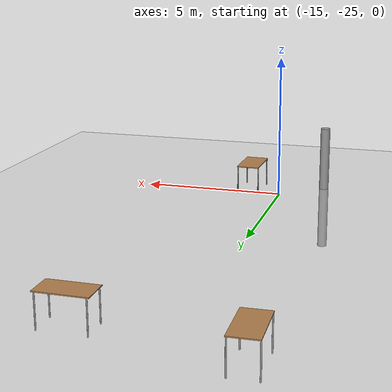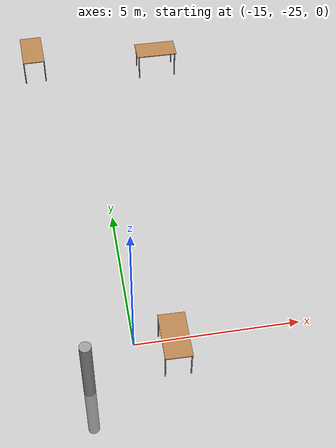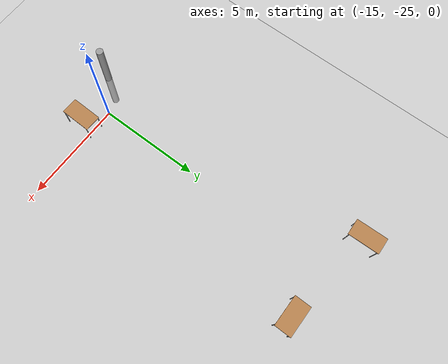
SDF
<sdf version="1.7">
 <world name="default">
  <model name="ground_plane">
   <static>1</static>
   <link name="link">
    <collision name="collision">
     <geometry><plane><normal>0 0 1</normal><size>100 100</size></plane></geometry>
     <surface>
      <contact><collide_bitmask>65535</collide_bitmask></contact>
      <friction><ode><mu>100</mu><mu2>50</mu2></ode></friction>
     </surface>
    </collision>
    <visual name="visual">
     <cast_shadows>0</cast_shadows>
     <geometry><plane><normal>0 0 1</normal><size>100 100</size></plane></geometry>
     <material>
      <script><uri>file://media/materials/scripts/gazebo.material</uri><name>Gazebo/Grey</name></script>
     </material>
    </visual>
   </link>
  </model>
  <model name="Table">
   <static>1</static>
   <link name="link">
    <collision name="surface">
     <pose>0 0 1 0 -0 0</pose>
     <geometry><box><size>1.5 0.8 0.03</size></box></geometry>
     <surface><friction><ode><mu>0.6</mu><mu2>0.6</mu2></ode></friction></surface>
    </collision>
    <visual name="visual1">
     <pose>0 0 1 0 -0 0</pose>
     <geometry><box><size>1.5 0.8 0.03</size></box></geometry>
     <material>
      <diffuse>1 1 1 1</diffuse>
      <script><uri>file://media/materials/scripts/gazebo.material</uri><name>Gazebo/Wood</name></script>
      <pbr><metal><albedo_map>model://Table/Table_Diffuse.jpg</albedo_map></metal></pbr>
     </material>
    </visual>
    <collision name="front_left_leg">
     <pose>0.68 0.38 0.5 0 -0 0</pose>
     <geometry><cylinder><radius>0.02</radius><length>1</length></cylinder></geometry>
    </collision>
    <visual name="front_left_leg">
     <pose>0.68 0.38 0.5 0 -0 0</pose>
     <geometry><cylinder><radius>0.02</radius><length>1</length></cylinder></geometry>
     <material>
      <diffuse>0.5 0.5 0.5 1</diffuse>
      <script><uri>file://media/materials/scripts/gazebo.material</uri><name>Gazebo/Grey</name></script>
     </material>
    </visual>
    <collision name="front_right_leg">
     <pose>0.68 -0.38 0.5 0 -0 0</pose>
     <geometry><cylinder><radius>0.02</radius><length>1</length></cylinder></geometry>
    </collision>
    <visual name="front_right_leg">
     <pose>0.68 -0.38 0.5 0 -0 0</pose>
     <geometry><cylinder><radius>0.02</radius><length>1</length></cylinder></geometry>
     <material>
      <diffuse>0.5 0.5 0.5 1</diffuse>
      <script><uri>file://media/materials/scripts/gazebo.material</uri><name>Gazebo/Grey</name></script>
     </material>
    </visual>
    <collision name="back_right_leg">
     <pose>-0.68 -0.38 0.5 0 -0 0</pose>
     <geometry><cylinder><radius>0.02</radius><length>1</length></cylinder></geometry>
    </collision>
    <visual name="back_right_leg">
     <pose>-0.68 -0.38 0.5 0 -0 0</pose>
     <geometry><cylinder><radius>0.02</radius><length>1</length></cylinder></geometry>
     <material>
      <diffuse>0.5 0.5 0.5 1</diffuse>
      <script><uri>file://media/materials/scripts/gazebo.material</uri><name>Gazebo/Grey</name></script>
     </material>
    </visual>
    <collision name="back_left_leg">
     <pose>-0.68 0.38 0.5 0 -0 0</pose>
     <geometry><cylinder><radius>0.02</radius><length>1</length></cylinder></geometry>
    </collision>
    <visual name="back_left_leg">
     <pose>-0.68 0.38 0.5 0 -0 0</pose>
     <geometry><cylinder><radius>0.02</radius><length>1</length></cylinder></geometry>
     <material>
      <diffuse>0.5 0.5 0.5 1</diffuse>
      <script><uri>file://media/materials/scripts/gazebo.material</uri><name>Gazebo/Grey</name></script>
     </material>
    </visual>
   </link>
   <pose>-12.3632 -12.6824 0 0 -0 0</pose>
  </model>
  <model name="Table_2">
   <static>1</static>
   <link name="link">
    <collision name="surface">
     <pose>0 0 1 0 -0 0</pose>
     <geometry><box><size>1.5 0.8 0.03</size></box></geometry>
     <surface><friction><ode><mu>0.6</mu><mu2>0.6</mu2></ode></friction></surface>
    </collision>
    <visual name="visual1">
     <pose>0 0 1 0 -0 0</pose>
     <geometry><box><size>1.5 0.8 0.03</size></box></geometry>
     <material>
      <diffuse>1 1 1 1</diffuse>
      <script><uri>file://media/materials/scripts/gazebo.material</uri><name>Gazebo/Wood</name></script>
      <pbr><metal><albedo_map>model://Table/Table_Diffuse.jpg</albedo_map></metal></pbr>
     </material>
    </visual>
    <collision name="front_left_leg">
     <pose>0.68 0.38 0.5 0 -0 0</pose>
     <geometry><cylinder><radius>0.02</radius><length>1</length></cylinder></geometry>
    </collision>
    <visual name="front_left_leg">
     <pose>0.68 0.38 0.5 0 -0 0</pose>
     <geometry><cylinder><radius>0.02</radius><length>1</length></cylinder></geometry>
     <material>
      <diffuse>0.5 0.5 0.5 1</diffuse>
      <script><uri>file://media/materials/scripts/gazebo.material</uri><name>Gazebo/Grey</name></script>
     </material>
    </visual>
    <collision name="front_right_leg">
     <pose>0.68 -0.38 0.5 0 -0 0</pose>
     <geometry><cylinder><radius>0.02</radius><length>1</length></cylinder></geometry>
    </collision>
    <visual name="front_right_leg">
     <pose>0.68 -0.38 0.5 0 -0 0</pose>
     <geometry><cylinder><radius>0.02</radius><length>1</length></cylinder></geometry>
     <material>
      <diffuse>0.5 0.5 0.5 1</diffuse>
      <script><uri>file://media/materials/scripts/gazebo.material</uri><name>Gazebo/Grey</name></script>
     </material>
    </visual>
    <collision name="back_right_leg">
     <pose>-0.68 -0.38 0.5 0 -0 0</pose>
     <geometry><cylinder><radius>0.02</radius><length>1</length></cylinder></geometry>
    </collision>
    <visual name="back_right_leg">
     <pose>-0.68 -0.38 0.5 0 -0 0</pose>
     <geometry><cylinder><radius>0.02</radius><length>1</length></cylinder></geometry>
     <material>
      <diffuse>0.5 0.5 0.5 1</diffuse>
      <script><uri>file://media/materials/scripts/gazebo.material</uri><name>Gazebo/Grey</name></script>
     </material>
    </visual>
    <collision name="back_left_leg">
     <pose>-0.68 0.38 0.5 0 -0 0</pose>
     <geometry><cylinder><radius>0.02</radius><length>1</length></cylinder></geometry>
    </collision>
    <visual name="back_left_leg">
     <pose>-0.68 0.38 0.5 0 -0 0</pose>
     <geometry><cylinder><radius>0.02</radius><length>1</length></cylinder></geometry>
     <material>
      <diffuse>0.5 0.5 0.5 1</diffuse>
      <script><uri>file://media/materials/scripts/gazebo.material</uri><name>Gazebo/Grey</name></script>
     </material>
    </visual>
   </link>
   <pose>-13.8816 -25.5123 0 0 0 -1.58944</pose>
  </model>
  <model name="filar">
   <link name="link">
    <inertial>
     <mass>0.532177</mass>
     <inertia>
      <ixx>0.930096</ixx>
      <ixy>0</ixy>
      <ixz>0</ixz>
      <iyy>0.930096</iyy>
      <iyz>0</iyz>
      <izz>0.00774183</izz>
     </inertia>
    </inertial>
    <visual name="visual">
     <geometry><cylinder><radius>0.170572</radius><length>4.57005</length></cylinder></geometry>
     <material>
      <script><name>Gazebo/Grey</name><uri>file://media/materials/scripts/gazebo.material</uri></script>
      <shader type="pixel"/>
     </material>
    </visual>
    <collision name="collision">
     <geometry><cylinder><radius>0.170572</radius><length>4.57005</length></cylinder></geometry>
     <surface>
      <friction>
       <ode><mu>1</mu><mu2>1</mu2><fdir1>0 0 0</fdir1><slip1>0</slip1><slip2>0</slip2></ode>
       <torsional>
        <coefficient>1</coefficient>
        <patch_radius>0</patch_radius>
        <surface_radius>0</surface_radius>
        <use_patch_radius>1</use_patch_radius>
        <ode><slip>0</slip></ode>
       </torsional>
      </friction>
      <bounce><restitution_coefficient>0</restitution_coefficient><threshold>1e+06</threshold></bounce>
      <contact>
       <collide_without_contact>0</collide_without_contact>
       <collide_without_contact_bitmask>1</collide_without_contact_bitmask>
       <collide_bitmask>1</collide_bitmask>
       <ode>
        <soft_cfm>0</soft_cfm>
        <soft_erp>0.2</soft_erp>
        <kp>1e+13</kp>
        <kd>1</kd>
        <max_vel>0.01</max_vel>
        <min_depth>0</min_depth>
       </ode>
       <bullet>
        <split_impulse>1</split_impulse>
        <split_impulse_penetration_threshold>-0.01</split_impulse_penetration_threshold>
        <soft_cfm>0</soft_cfm>
        <soft_erp>0.2</soft_erp>
        <kp>1e+13</kp>
        <kd>1</kd>
       </bullet>
      </contact>
     </surface>
    </collision>
   </link>
   <static>0</static>
   <pose>-16.4504 -26.3002 0 0 -0 0</pose>
  </model>
  <model name="Table_3">
   <static>1</static>
   <link name="link">
    <collision name="surface">
     <pose>0 0 1 0 -0 0</pose>
     <geometry><box><size>1.5 0.8 0.03</size></box></geometry>
     <surface><friction><ode><mu>0.6</mu><mu2>0.6</mu2></ode></friction></surface>
    </collision>
    <visual name="visual1">
     <pose>0 0 1 0 -0 0</pose>
     <geometry><box><size>1.5 0.8 0.03</size></box></geometry>
     <material>
      <diffuse>1 1 1 1</diffuse>
      <script><uri>file://media/materials/scripts/gazebo.material</uri><name>Gazebo/Wood</name></script>
      <pbr><metal><albedo_map>model://Table/Table_Diffuse.jpg</albedo_map></metal></pbr>
     </material>
    </visual>
    <collision name="front_left_leg">
     <pose>0.68 0.38 0.5 0 -0 0</pose>
     <geometry><cylinder><radius>0.02</radius><length>1</length></cylinder></geometry>
    </collision>
    <visual name="front_left_leg">
     <pose>0.68 0.38 0.5 0 -0 0</pose>
     <geometry><cylinder><radius>0.02</radius><length>1</length></cylinder></geometry>
     <material>
      <diffuse>0.5 0.5 0.5 1</diffuse>
      <script><uri>file://media/materials/scripts/gazebo.material</uri><name>Gazebo/Grey</name></script>
     </material>
    </visual>
    <collision name="front_right_leg">
     <pose>0.68 -0.38 0.5 0 -0 0</pose>
     <geometry><cylinder><radius>0.02</radius><length>1</length></cylinder></geometry>
    </collision>
    <visual name="front_right_leg">
     <pose>0.68 -0.38 0.5 0 -0 0</pose>
     <geometry><cylinder><radius>0.02</radius><length>1</length></cylinder></geometry>
     <material>
      <diffuse>0.5 0.5 0.5 1</diffuse>
      <script><uri>file://media/materials/scripts/gazebo.material</uri><name>Gazebo/Grey</name></script>
     </material>
    </visual>
    <collision name="back_right_leg">
     <pose>-0.68 -0.38 0.5 0 -0 0</pose>
     <geometry><cylinder><radius>0.02</radius><length>1</length></cylinder></geometry>
    </collision>
    <visual name="back_right_leg">
     <pose>-0.68 -0.38 0.5 0 -0 0</pose>
     <geometry><cylinder><radius>0.02</radius><length>1</length></cylinder></geometry>
     <material>
      <diffuse>0.5 0.5 0.5 1</diffuse>
      <script><uri>file://media/materials/scripts/gazebo.material</uri><name>Gazebo/Grey</name></script>
     </material>
    </visual>
    <collision name="back_left_leg">
     <pose>-0.68 0.38 0.5 0 -0 0</pose>
     <geometry><cylinder><radius>0.02</radius><length>1</length></cylinder></geometry>
    </collision>
    <visual name="back_left_leg">
     <pose>-0.68 0.38 0.5 0 -0 0</pose>
     <geometry><cylinder><radius>0.02</radius><length>1</length></cylinder></geometry>
     <material>
      <diffuse>0.5 0.5 0.5 1</diffuse>
      <script><uri>file://media/materials/scripts/gazebo.material</uri><name>Gazebo/Grey</name></script>
     </material>
    </visual>
   </link>
   <pose>-17.0236 -11.9977 0 0 0 -1.54257</pose>
  </model>
 </world>
</sdf>
